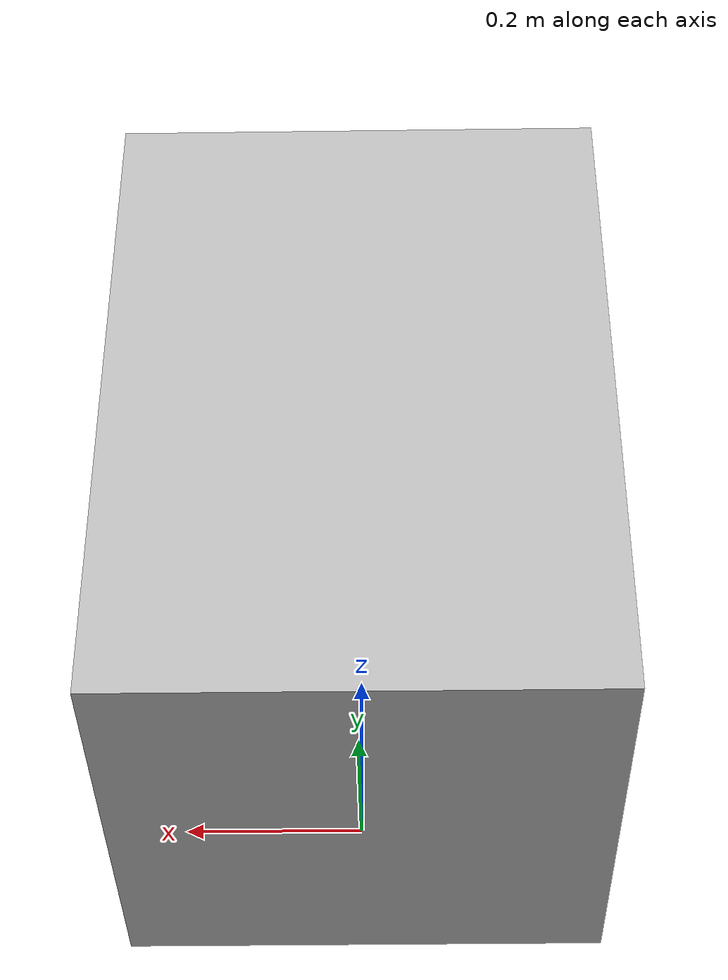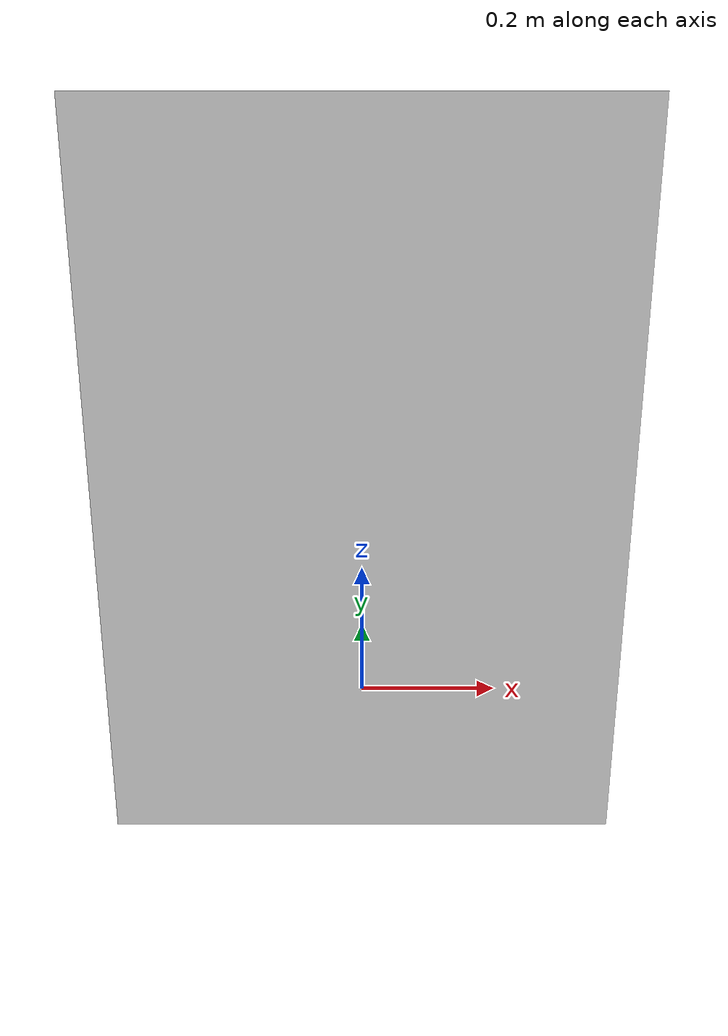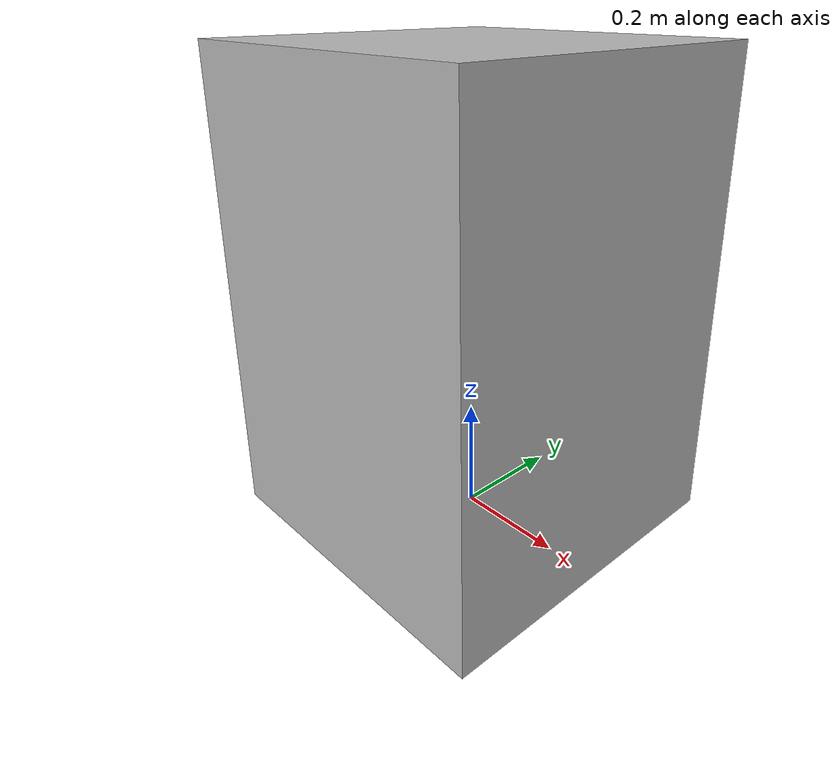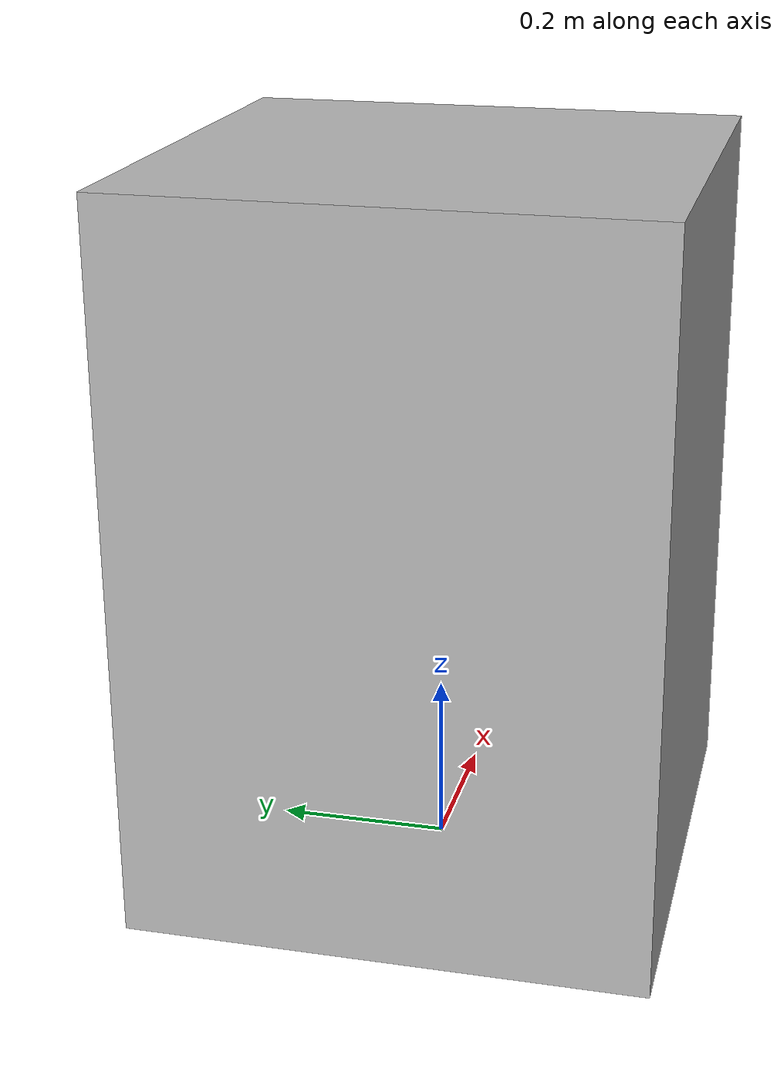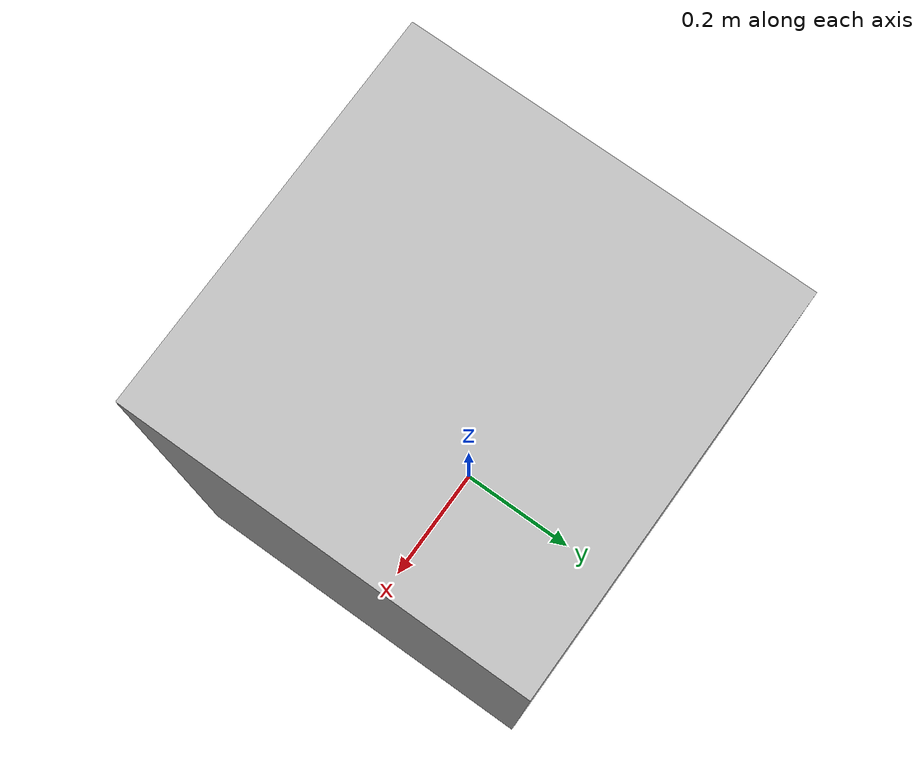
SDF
<?xml version="1.0" ?>
<sdf version="1.6">
  <model name="rwc2024/dishwasher">
    <static>true</static>
    <link name="1_link">
      <collision name="1_col">
        <geometry>
          <box>
            <size>0.593 0.597 0.843</size>
          </box>
        </geometry>
      </collision>
      <visual name="1_vis">
        <geometry>
          <box>
            <size>0.593 0.597 0.843</size>
          </box>
        </geometry>
      </visual>
      <pose>0.0 0.0 0.4215 0 0 0</pose>
    </link>
    <link name="on_top_of">
      <virtual_volume name="on_top_of_vv">
        <geometry>
          <box>
            <size>0.573 0.537 0.25</size>
          </box>
        </geometry>
        <pose>0.0 0.0 0.988 0 0 0</pose>
      </virtual_volume>
    </link>
    <link name="in_front_of">
      <virtual_volume name="in_front_of_vv">
        <geometry>
          <box>
            <size>0.2 0.397 0.01</size>
          </box>
        </geometry>
        <pose>0.7965 0.0 0.005 0 0 0</pose>
      </virtual_volume>
    </link>
    <link name="in_front_of_ctt">
      <virtual_volume name="in_front_of_vv">
        <geometry>
          <box>
            <size>0.2 0.397 0.01</size>
          </box>
        </geometry>
        <pose>1.69 0.0 0.005 0 0 0</pose>
      </virtual_volume>
    </link>
  </model>
</sdf>
